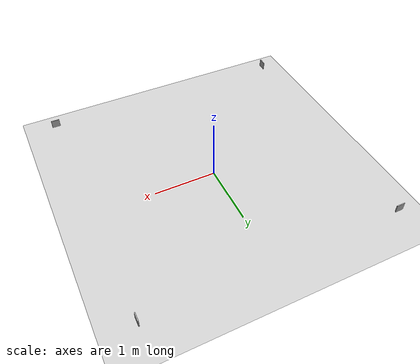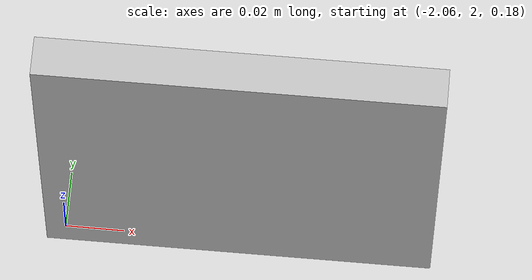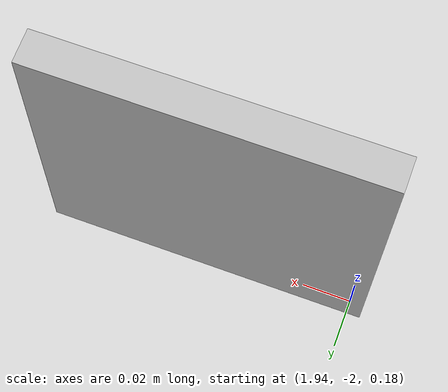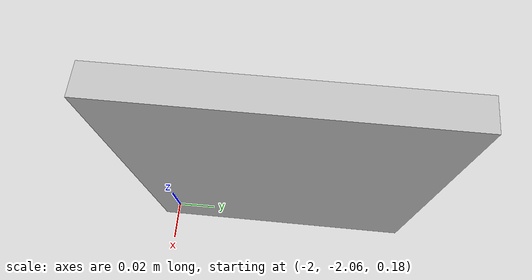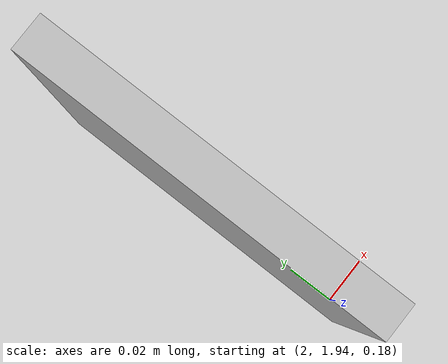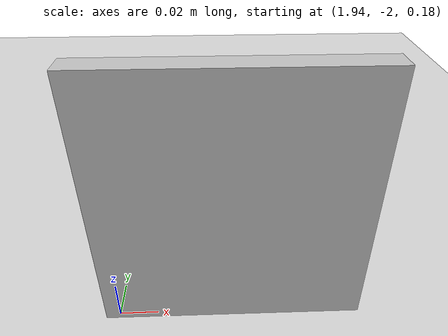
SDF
<?xml version="1.0" ?>

<sdf version="1.5">
	<world name="default">
		<!-- A ground plane -->
		<include>
			<uri>model://ground_plane</uri>
		</include>

        	<!-- aruco landmark 0 -->
		<include>
			<uri>model://aruco_marker_0</uri>
			<pose>-2 -2 0.25 0 0 0</pose>
		</include>
		<light type="point" name="my_light_0">
		    <pose>-1 -2 1 0 0 0</pose>
		    <diffuse>.5 .5 .5 1</diffuse>
		    <specular>.1 .1 .1 1</specular>
		    <attenuation>
		        <range>20</range>
		        <constant>0.5</constant>
		        <linear>0.01</linear>
		    </attenuation>
		    <cast_shadows>true</cast_shadows>
		</light>

        	<!-- aruco landmark 1 -->
		<include>
			<uri>model://aruco_marker_1</uri>
			<pose>-2 2 0.25 0 0 1.571</pose>
		</include>
		<light type="point" name="my_light_1">
		    <pose>-2 1 1 0 0 0</pose>
		    <diffuse>.5 .5 .5 1</diffuse>
		    <specular>.1 .1 .1 1</specular>
		    <attenuation>
		        <range>20</range>
		        <constant>0.5</constant>
		        <linear>0.01</linear>
		    </attenuation>
		    <cast_shadows>true</cast_shadows>
		</light>

        	<!-- aruco landmark 2 -->
		<include>
			<uri>model://aruco_marker_2</uri>
			<pose>2 2 0.25 0 0 3.141</pose>
		</include>
		<light type="point" name="my_light_2">
		    <pose>1 2 1 0 0 0</pose>
		    <diffuse>.5 .5 .5 1</diffuse>
		    <specular>.1 .1 .1 1</specular>
		    <attenuation>
		        <range>20</range>
		        <constant>0.5</constant>
		        <linear>0.01</linear>
		    </attenuation>
		    <cast_shadows>true</cast_shadows>
		</light>

        	<!-- aruco landmark 3 -->
		<include>
			<uri>model://aruco_marker_3</uri>
			<pose>2 -2 0.25 0 0 4.712</pose>
		</include>
		<light type="point" name="my_light_3">
		    <pose>2 -1 1 0 0 0</pose>
		    <diffuse>.5 .5 .5 1</diffuse>
		    <specular>.1 .1 .1 1</specular>
		    <attenuation>
		        <range>20</range>
		        <constant>0.5</constant>
		        <linear>0.01</linear>
		    </attenuation>
		    <cast_shadows>true</cast_shadows>
		</light>
	</world>
</sdf>

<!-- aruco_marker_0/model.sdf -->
<sdf version="1.5">
  <model name="aruco_marker_0">
    <static>true</static>
    <link name="base">
      <collision name="collision">
        <geometry>
          <box>
            <size>0.013125 0.13125 0.13125</size>
          </box>
        </geometry>
        <surface>
          <friction>
            <ode>
              <mu>100</mu>
              <mu2>50</mu2>
            </ode>
          </friction>
        </surface>
      </collision>

      <visual name="visual">
        <geometry>
          <box>
            <size>0.013125 0.13125 0.13125</size>
          </box>
        </geometry>
        <material>
          <script>
            <uri>model://aruco_marker_0/materials/scripts</uri>
            <uri>model://aruco_marker_0/materials/textures</uri>
            <name>aruco_marker_0/Diffuse</name>
          </script>
        </material>
      </visual>
    </link>

    <joint name="world_joint" type="fixed">
      <child>base</child>
      <parent>world</parent>
      <axis>
        <limit>
          <lower>0</lower>
          <upper>0</upper>
        </limit>
        <xyz>0 1 0</xyz>
        <dynamics>
          <damping>1.0</damping>
        </dynamics>
        <use_parent_model_frame>true</use_parent_model_frame>
      </axis>
      <physics>
        <ode>
          <cfm_damping>1</cfm_damping>
        </ode>
      </physics>
    </joint>
  </model>
</sdf>

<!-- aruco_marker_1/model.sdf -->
<sdf version="1.5">
  <model name="aruco_marker_1">
    <static>true</static>
    <link name="link">
      <collision name="collision">
        <geometry>
          <box>
            <size>0.013125 0.13125 0.13125</size>
          </box>
        </geometry>
        <surface>
          <friction>
            <ode>
              <mu>100</mu>
              <mu2>50</mu2>
            </ode>
          </friction>
        </surface>
      </collision>

      <visual name="visual">
        <geometry>
          <box>
            <size>0.013125 0.13125 0.13125</size>
          </box>
        </geometry>
        <material>
          <script>
            <uri>model://aruco_marker_1/materials/scripts</uri>
            <uri>model://aruco_marker_1/materials/textures</uri>
            <name>aruco_marker_1/Diffuse</name>
          </script>
        </material>
      </visual>
    </link>
  </model>
</sdf>

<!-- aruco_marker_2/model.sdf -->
<sdf version="1.5">
  <model name="aruco_marker_2">
    <static>true</static>
    <link name="link">
      <collision name="collision">
        <geometry>
          <box>
            <size>0.013125 0.13125 0.13125</size>
          </box>
        </geometry>
        <surface>
          <friction>
            <ode>
              <mu>100</mu>
              <mu2>50</mu2>
            </ode>
          </friction>
        </surface>
      </collision>

      <visual name="visual">
        <geometry>
          <box>
            <size>0.013125 0.13125 0.13125</size>
          </box>
        </geometry>
        <material>
          <script>
            <uri>model://aruco_marker_2/materials/scripts</uri>
            <uri>model://aruco_marker_2/materials/textures</uri>
            <name>aruco_marker_2/Diffuse</name>
          </script>
        </material>
      </visual>
    </link>
  </model>
</sdf>

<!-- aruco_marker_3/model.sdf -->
<sdf version="1.5">
  <model name="aruco_marker_3">
    <static>true</static>
    <link name="link">
      <collision name="collision">
        <geometry>
          <box>
            <size>0.013125 0.13125 0.13125</size>
          </box>
        </geometry>
        <surface>
          <friction>
            <ode>
              <mu>100</mu>
              <mu2>50</mu2>
            </ode>
          </friction>
        </surface>
      </collision>

      <visual name="visual">
        <geometry>
          <box>
            <size>0.013125 0.13125 0.13125</size>
          </box>
        </geometry>
        <material>
          <script>
            <uri>model://aruco_marker_3/materials/scripts</uri>
            <uri>model://aruco_marker_3/materials/textures</uri>
            <name>aruco_marker_3/Diffuse</name>
          </script>
        </material>
      </visual>
    </link>
  </model>
</sdf>
